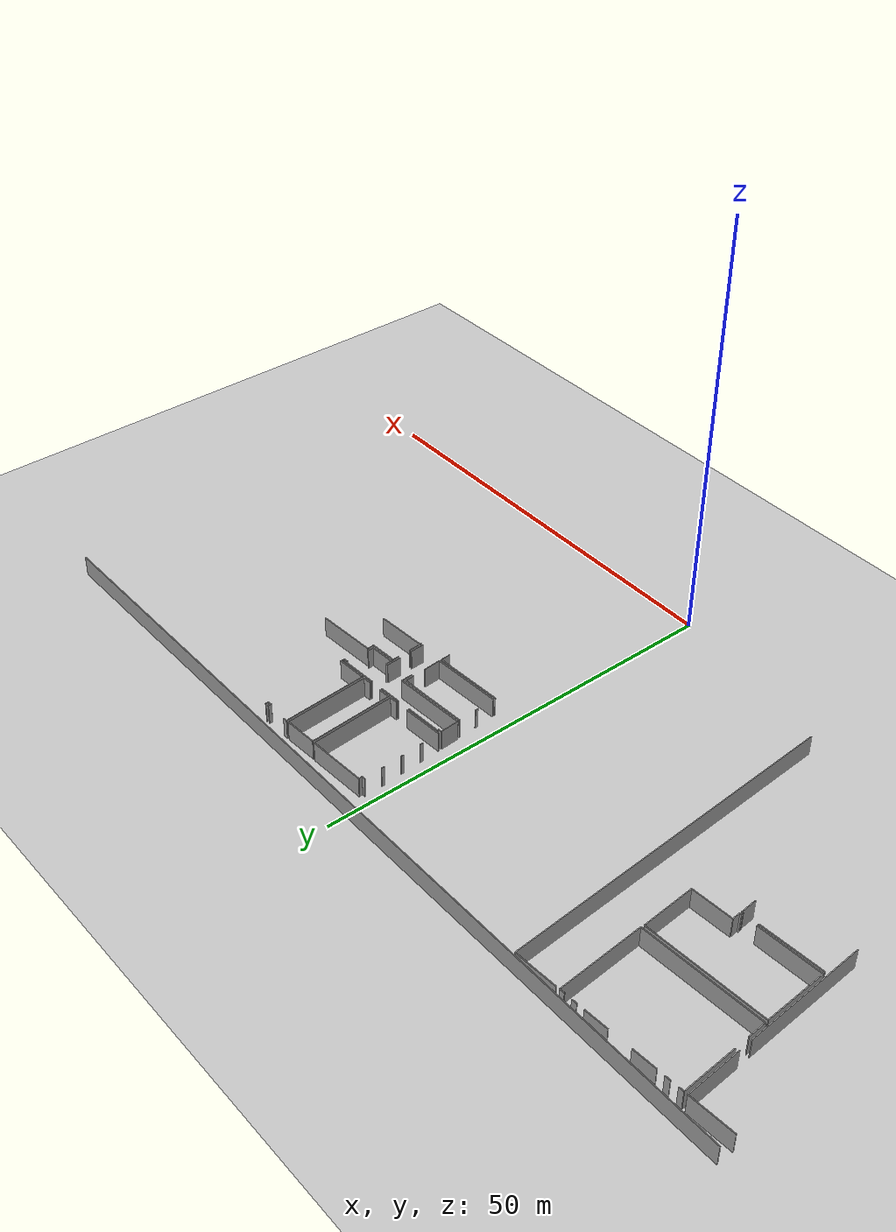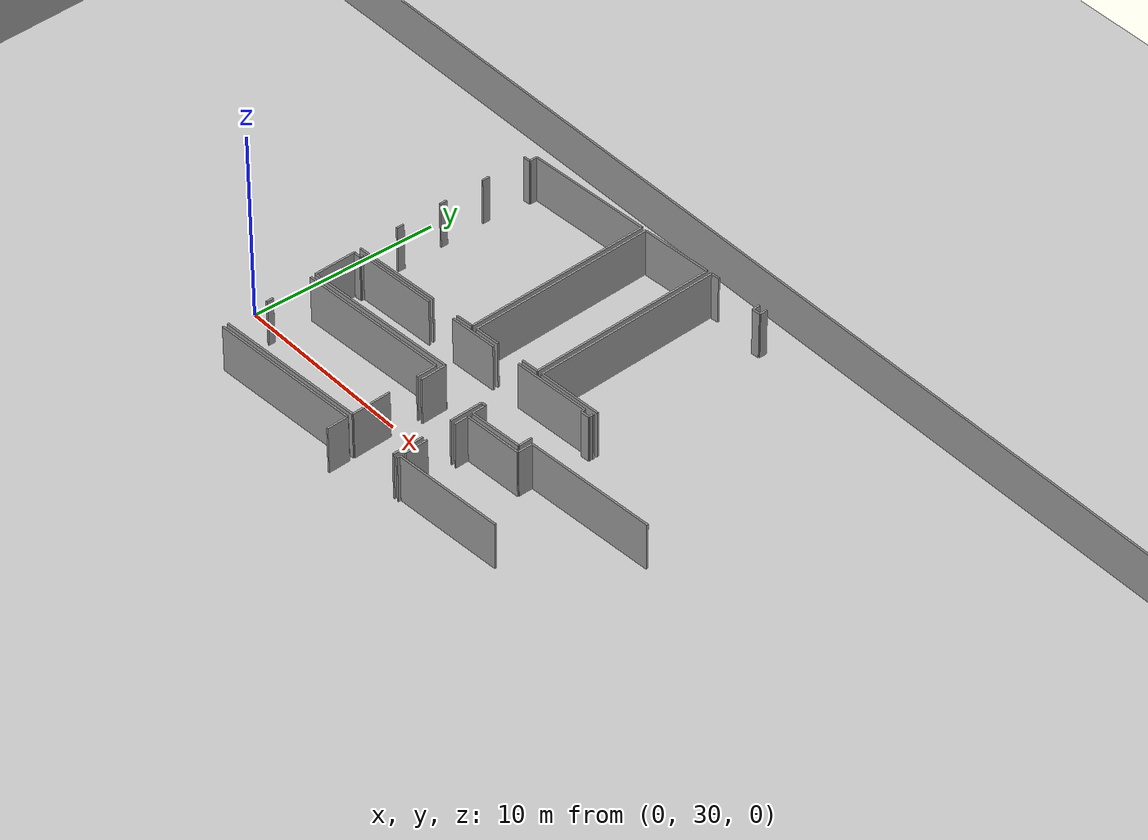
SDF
<sdf version="1.6">
 <world name="default">
  <model name="ground_plane">
   <static>1</static>
   <link name="link">
    <collision name="collision">
     <geometry><plane><normal>0 0 1</normal><size>100 100</size></plane></geometry>
     <surface><friction><ode><mu>100</mu><mu2>50</mu2></ode></friction></surface>
    </collision>
    <visual name="visual">
     <cast_shadows>0</cast_shadows>
     <geometry><plane><normal>0 0 1</normal><size>100 100</size></plane></geometry>
     <material>
      <script><uri>file://media/materials/scripts/gazebo.material</uri><name>Gazebo/Grey</name></script>
     </material>
    </visual>
   </link>
  </model>
  <model name="50025633">
   <static>1</static>
   <link name="Wall_0">
    <collision name="Wall_0_Collision">
     <geometry><box><size>0.969436459965 0.1 2.5</size></box></geometry>
     <pose>0.484718229982 0 1.25 0 0 0</pose>
    </collision>
    <visual name="Wall_0_Visual">
     <pose>0.484718229982 0 1.25 0 0 0</pose>
     <geometry><box><size>0.969436459965 0.1 2.5</size></box></geometry>
     <material>
      <script><uri>file://media/materials/scripts/gazebo.material</uri><name>Gazebo/Grey</name></script>
      <ambient>1 1 1 1</ambient>
     </material>
    </visual>
    <pose>59.5283012875 -12.5141427038 0 0 0 -3.05907173526</pose>
   </link>
   <link name="Wall_1">
    <collision name="Wall_1_Collision">
     <geometry><box><size>4.89840338192 0.1 2.5</size></box></geometry>
     <pose>2.44920169096 0 1.25 0 0 0</pose>
    </collision>
    <visual name="Wall_1_Visual">
     <pose>2.44920169096 0 1.25 0 0 0</pose>
     <geometry><box><size>4.89840338192 0.1 2.5</size></box></geometry>
     <material>
      <script><uri>file://media/materials/scripts/gazebo.material</uri><name>Gazebo/Grey</name></script>
      <ambient>1 1 1 1</ambient>
     </material>
    </visual>
    <pose>56.970228227 -12.6720531534 0 0 0 -3.07837304394</pose>
   </link>
   <link name="Wall_2">
    <collision name="Wall_2_Collision">
     <geometry><box><size>0.39960573099 0.1 2.5</size></box></geometry>
     <pose>0.199802865495 0 1.25 0 0 0</pose>
    </collision>
    <visual name="Wall_2_Visual">
     <pose>0.199802865495 0 1.25 0 0 0</pose>
     <geometry><box><size>0.39960573099 0.1 2.5</size></box></geometry>
     <material>
      <script><uri>file://media/materials/scripts/gazebo.material</uri><name>Gazebo/Grey</name></script>
      <ambient>1 1 1 1</ambient>
     </material>
    </visual>
    <pose>51.9773106948 -10.8397583703 0 0 0 1.58891834909</pose>
   </link>
   <link name="Wall_3">
    <collision name="Wall_3_Collision">
     <geometry><box><size>0.38551686731 0.1 2.5</size></box></geometry>
     <pose>0.192758433655 0 1.25 0 0 0</pose>
    </collision>
    <visual name="Wall_3_Visual">
     <pose>0.192758433655 0 1.25 0 0 0</pose>
     <geometry><box><size>0.38551686731 0.1 2.5</size></box></geometry>
     <material>
      <script><uri>file://media/materials/scripts/gazebo.material</uri><name>Gazebo/Grey</name></script>
      <ambient>1 1 1 1</ambient>
     </material>
    </visual>
    <pose>51.8225762397 -8.25081464261 0 0 0 1.60342569152</pose>
   </link>
   <link name="Wall_4">
    <collision name="Wall_4_Collision">
     <geometry><box><size>0.398091356513 0.1 2.5</size></box></geometry>
     <pose>0.199045678256 0 1.25 0 0 0</pose>
    </collision>
    <visual name="Wall_4_Visual">
     <pose>0.199045678256 0 1.25 0 0 0</pose>
     <geometry><box><size>0.398091356513 0.1 2.5</size></box></geometry>
     <material>
      <script><uri>file://media/materials/scripts/gazebo.material</uri><name>Gazebo/Grey</name></script>
      <ambient>1 1 1 1</ambient>
     </material>
    </visual>
    <pose>51.6773697683 -5.69274158203 0 0 0 1.60271396404</pose>
   </link>
   <link name="Wall_5">
    <collision name="Wall_5_Collision">
     <geometry><box><size>0.392351935738 0.1 2.5</size></box></geometry>
     <pose>0.196175967869 0 1.25 0 0 0</pose>
    </collision>
    <visual name="Wall_5_Visual">
     <pose>0.196175967869 0 1.25 0 0 0</pose>
     <geometry><box><size>0.392351935738 0.1 2.5</size></box></geometry>
     <material>
      <script><uri>file://media/materials/scripts/gazebo.material</uri><name>Gazebo/Grey</name></script>
      <ambient>1 1 1 1</ambient>
     </material>
    </visual>
    <pose>51.5258113078 -3.14102051057 0 0 0 0.0644789553313</pose>
   </link>
   <link name="Wall_6">
    <collision name="Wall_6_Collision">
     <geometry><box><size>0.423217186138 0.1 2.5</size></box></geometry>
     <pose>0.211608593069 0 1.25 0 0 0</pose>
    </collision>
    <visual name="Wall_6_Visual">
     <pose>0.211608593069 0 1.25 0 0 0</pose>
     <geometry><box><size>0.423217186138 0.1 2.5</size></box></geometry>
     <material>
      <script><uri>file://media/materials/scripts/gazebo.material</uri><name>Gazebo/Grey</name></script>
      <ambient>1 1 1 1</ambient>
     </material>
    </visual>
    <pose>51.9173479175 -3.11573959385 0 0 0 1.58580570694</pose>
   </link>
   <link name="Wall_7">
    <collision name="Wall_7_Collision">
     <geometry><box><size>6.99771601938 0.1 2.5</size></box></geometry>
     <pose>3.49885800969 0 1.25 0 0 0</pose>
    </collision>
    <visual name="Wall_7_Visual">
     <pose>3.49885800969 0 1.25 0 0 0</pose>
     <geometry><box><size>6.99771601938 0.1 2.5</size></box></geometry>
     <material>
      <script><uri>file://media/materials/scripts/gazebo.material</uri><name>Gazebo/Grey</name></script>
      <ambient>1 1 1 1</ambient>
     </material>
    </visual>
    <pose>51.9109959284 -2.69257007832 0 0 0 0.0586998542074</pose>
   </link>
   <link name="Wall_8">
    <collision name="Wall_8_Collision">
     <geometry><box><size>10.2515792055 0.1 2.5</size></box></geometry>
     <pose>5.12578960273 0 1.25 0 0 0</pose>
    </collision>
    <visual name="Wall_8_Visual">
     <pose>5.12578960273 0 1.25 0 0 0</pose>
     <geometry><box><size>10.2515792055 0.1 2.5</size></box></geometry>
     <material>
      <script><uri>file://media/materials/scripts/gazebo.material</uri><name>Gazebo/Grey</name></script>
      <ambient>1 1 1 1</ambient>
     </material>
    </visual>
    <pose>58.8966594889 -2.28204102115 0 0 0 -1.50914317851</pose>
   </link>
   <link name="Wall_9">
    <collision name="Wall_9_Collision">
     <geometry><box><size>0.957259403958 0.1 2.5</size></box></geometry>
     <pose>0.478629701979 0 1.25 0 0 0</pose>
    </collision>
    <visual name="Wall_9_Visual">
     <pose>0.478629701979 0 1.25 0 0 0</pose>
     <geometry><box><size>0.957259403958 0.1 2.5</size></box></geometry>
     <material>
      <script><uri>file://media/materials/scripts/gazebo.material</uri><name>Gazebo/Grey</name></script>
      <ambient>1 1 1 1</ambient>
     </material>
    </visual>
    <pose>63.7411945551 -12.2488836379 0 0 0 -3.08037420395</pose>
   </link>
   <link name="Wall_10">
    <collision name="Wall_10_Collision">
     <geometry><box><size>1.39302038249 0.1 2.5</size></box></geometry>
     <pose>0.696510191243 0 1.25 0 0 0</pose>
    </collision>
    <visual name="Wall_10_Visual">
     <pose>0.696510191243 0 1.25 0 0 0</pose>
     <geometry><box><size>1.39302038249 0.1 2.5</size></box></geometry>
     <material>
      <script><uri>file://media/materials/scripts/gazebo.material</uri><name>Gazebo/Grey</name></script>
      <ambient>1 1 1 1</ambient>
     </material>
    </visual>
    <pose>61.202685621 -12.3990446608 0 0 0 -3.07935588312</pose>
   </link>
   <link name="Wall_11">
    <collision name="Wall_11_Collision">
     <geometry><box><size>10.2055584932 0.1 2.5</size></box></geometry>
     <pose>5.10277924658 0 1.25 0 0 0</pose>
    </collision>
    <visual name="Wall_11_Visual">
     <pose>5.10277924658 0 1.25 0 0 0</pose>
     <geometry><box><size>10.2055584932 0.1 2.5</size></box></geometry>
     <material>
      <script><uri>file://media/materials/scripts/gazebo.material</uri><name>Gazebo/Grey</name></script>
      <ambient>1 1 1 1</ambient>
     </material>
    </visual>
    <pose>59.8123622412 -12.4856857925 0 0 0 1.63323920801</pose>
   </link>
   <link name="Wall_12">
    <collision name="Wall_12_Collision">
     <geometry><box><size>3.95240272326 0.1 2.5</size></box></geometry>
     <pose>1.97620136163 0 1.25 0 0 0</pose>
    </collision>
    <visual name="Wall_12_Visual">
     <pose>1.97620136163 0 1.25 0 0 0</pose>
     <geometry><box><size>3.95240272326 0.1 2.5</size></box></geometry>
     <material>
      <script><uri>file://media/materials/scripts/gazebo.material</uri><name>Gazebo/Grey</name></script>
      <ambient>1 1 1 1</ambient>
     </material>
    </visual>
    <pose>59.1755118115 -2.30001715037 0 0 0 0.0649186328604</pose>
   </link>
   <link name="Wall_13">
    <collision name="Wall_13_Collision">
     <geometry><box><size>10.2241844338 0.1 2.5</size></box></geometry>
     <pose>5.11209221692 0 1.25 0 0 0</pose>
    </collision>
    <visual name="Wall_13_Visual">
     <pose>5.11209221692 0 1.25 0 0 0</pose>
     <geometry><box><size>10.2241844338 0.1 2.5</size></box></geometry>
     <material>
      <script><uri>file://media/materials/scripts/gazebo.material</uri><name>Gazebo/Grey</name></script>
      <ambient>1 1 1 1</ambient>
     </material>
    </visual>
    <pose>63.1195888993 -2.04361275733 0 0 0 -1.50996123104</pose>
   </link>
   <link name="Wall_15">
    <collision name="Wall_15_Collision">
     <geometry><box><size>3.58060873368 0.1 2.5</size></box></geometry>
     <pose>1.79030436684 0 1.25 0 0 0</pose>
    </collision>
    <visual name="Wall_15_Visual">
     <pose>1.79030436684 0 1.25 0 0 0</pose>
     <geometry><box><size>3.58060873368 0.1 2.5</size></box></geometry>
     <material>
      <script><uri>file://media/materials/scripts/gazebo.material</uri><name>Gazebo/Grey</name></script>
      <ambient>1 1 1 1</ambient>
     </material>
    </visual>
    <pose>67.6002820283 -12.0214824272 0 0 0 -3.08511404785</pose>
   </link>
   <link name="Wall_16">
    <collision name="Wall_16_Collision">
     <geometry><box><size>10.2271120577 0.1 2.5</size></box></geometry>
     <pose>5.11355602885 0 1.25 0 0 0</pose>
    </collision>
    <visual name="Wall_16_Visual">
     <pose>5.11355602885 0 1.25 0 0 0</pose>
     <geometry><box><size>10.2271120577 0.1 2.5</size></box></geometry>
     <material>
      <script><uri>file://media/materials/scripts/gazebo.material</uri><name>Gazebo/Grey</name></script>
      <ambient>1 1 1 1</ambient>
     </material>
    </visual>
    <pose>64.0253825485 -12.2236027212 0 0 0 1.63258471512</pose>
   </link>
   <link name="Wall_17">
    <collision name="Wall_17_Collision">
     <geometry><box><size>0.477315919187 0.1 2.5</size></box></geometry>
     <pose>0.238657959593 0 1.25 0 0 0</pose>
    </collision>
    <visual name="Wall_17_Visual">
     <pose>0.238657959593 0 1.25 0 0 0</pose>
     <geometry><box><size>0.477315919187 0.1 2.5</size></box></geometry>
     <material>
      <script><uri>file://media/materials/scripts/gazebo.material</uri><name>Gazebo/Grey</name></script>
      <ambient>1 1 1 1</ambient>
     </material>
    </visual>
    <pose>63.3938677897 -2.0160070126 0 0 0 0.0700559247163</pose>
   </link>
   <link name="Wall_18">
    <collision name="Wall_18_Collision">
     <geometry><box><size>0.398716292036 0.1 2.5</size></box></geometry>
     <pose>0.199358146018 0 1.25 0 0 0</pose>
    </collision>
    <visual name="Wall_18_Visual">
     <pose>0.199358146018 0 1.25 0 0 0</pose>
     <geometry><box><size>0.398716292036 0.1 2.5</size></box></geometry>
     <material>
      <script><uri>file://media/materials/scripts/gazebo.material</uri><name>Gazebo/Grey</name></script>
      <ambient>1 1 1 1</ambient>
     </material>
    </visual>
    <pose>66.4381220979 -1.82096283451 0 0 0 -1.50734798673</pose>
   </link>
   <link name="Wall_19">
    <collision name="Wall_19_Collision">
     <geometry><box><size>0.436477734711 0.1 2.5</size></box></geometry>
     <pose>0.218238867355 0 1.25 0 0 0</pose>
    </collision>
    <visual name="Wall_19_Visual">
     <pose>0.218238867355 0 1.25 0 0 0</pose>
     <geometry><box><size>0.436477734711 0.1 2.5</size></box></geometry>
     <material>
      <script><uri>file://media/materials/scripts/gazebo.material</uri><name>Gazebo/Grey</name></script>
      <ambient>1 1 1 1</ambient>
     </material>
    </visual>
    <pose>66.4634030147 -2.21887684128 0 0 0 0.0578944140467</pose>
   </link>
   <link name="Wall_20">
    <collision name="Wall_20_Collision">
     <geometry><box><size>0.39796269521 0.1 2.5</size></box></geometry>
     <pose>0.198981347605 0 1.25 0 0 0</pose>
    </collision>
    <visual name="Wall_20_Visual">
     <pose>0.198981347605 0 1.25 0 0 0</pose>
     <geometry><box><size>0.39796269521 0.1 2.5</size></box></geometry>
     <material>
      <script><uri>file://media/materials/scripts/gazebo.material</uri><name>Gazebo/Grey</name></script>
      <ambient>1 1 1 1</ambient>
     </material>
    </visual>
    <pose>66.8991494687 -2.19362133252 0 0 0 1.58643900711</pose>
   </link>
   <link name="Wall_59">
    <collision name="Wall_59_Collision">
     <geometry><box><size>1.43457575567 0.1 2.5</size></box></geometry>
     <pose>0.717287877837 0 1.25 0 0 0</pose>
    </collision>
    <visual name="Wall_59_Visual">
     <pose>0.717287877837 0 1.25 0 0 0</pose>
     <geometry><box><size>1.43457575567 0.1 2.5</size></box></geometry>
     <material>
      <script><uri>file://media/materials/scripts/gazebo.material</uri><name>Gazebo/Grey</name></script>
      <ambient>1 1 1 1</ambient>
     </material>
    </visual>
    <pose>61.008187714 -16.5411767695 0 0 0 1.63779450686</pose>
   </link>
   <link name="Wall_60">
    <collision name="Wall_60_Collision">
     <geometry><box><size>8.64301678864 0.1 2.5</size></box></geometry>
     <pose>4.32150839432 0 1.25 0 0 0</pose>
    </collision>
    <visual name="Wall_60_Visual">
     <pose>4.32150839432 0 1.25 0 0 0</pose>
     <geometry><box><size>8.64301678864 0.1 2.5</size></box></geometry>
     <material>
      <script><uri>file://media/materials/scripts/gazebo.material</uri><name>Gazebo/Grey</name></script>
      <ambient>1 1 1 1</ambient>
     </material>
    </visual>
    <pose>60.9121456384 -15.10981954 0 0 0 -3.07930403915</pose>
   </link>
   <link name="Wall_61">
    <collision name="Wall_61_Collision">
     <geometry><box><size>2.27100583824 0.1 2.5</size></box></geometry>
     <pose>1.13550291912 0 1.25 0 0 0</pose>
    </collision>
    <visual name="Wall_61_Visual">
     <pose>1.13550291912 0 1.25 0 0 0</pose>
     <geometry><box><size>2.27100583824 0.1 2.5</size></box></geometry>
     <material>
      <script><uri>file://media/materials/scripts/gazebo.material</uri><name>Gazebo/Grey</name></script>
      <ambient>1 1 1 1</ambient>
     </material>
    </visual>
    <pose>52.2858903266 -15.6478330189 0 0 0 1.63001532079</pose>
   </link>
   <link name="Wall_62">
    <collision name="Wall_62_Collision">
     <geometry><box><size>0.432614855793 0.1 2.5</size></box></geometry>
     <pose>0.216307427896 0 1.25 0 0 0</pose>
    </collision>
    <visual name="Wall_62_Visual">
     <pose>0.216307427896 0 1.25 0 0 0</pose>
     <geometry><box><size>0.432614855793 0.1 2.5</size></box></geometry>
     <material>
      <script><uri>file://media/materials/scripts/gazebo.material</uri><name>Gazebo/Grey</name></script>
      <ambient>1 1 1 1</ambient>
     </material>
    </visual>
    <pose>52.1514822367 -13.3808081001 0 0 0 0.0443565420437</pose>
   </link>
   <link name="Wall_63">
    <collision name="Wall_63_Collision">
     <geometry><box><size>0.183561275989 0.1 2.5</size></box></geometry>
     <pose>0.0917806379945 0 1.25 0 0 0</pose>
    </collision>
    <visual name="Wall_63_Visual">
     <pose>0.0917806379945 0 1.25 0 0 0</pose>
     <geometry><box><size>0.183561275989 0.1 2.5</size></box></geometry>
     <material>
      <script><uri>file://media/materials/scripts/gazebo.material</uri><name>Gazebo/Grey</name></script>
      <ambient>1 1 1 1</ambient>
     </material>
    </visual>
    <pose>52.5836715768 -13.3616250929 0 0 0 1.67549213892</pose>
   </link>
   <link name="Wall_64">
    <collision name="Wall_64_Collision">
     <geometry><box><size>4.45454311619 0.1 2.5</size></box></geometry>
     <pose>2.2272715581 0 1.25 0 0 0</pose>
    </collision>
    <visual name="Wall_64_Visual">
     <pose>2.2272715581 0 1.25 0 0 0</pose>
     <geometry><box><size>4.45454311619 0.1 2.5</size></box></geometry>
     <material>
      <script><uri>file://media/materials/scripts/gazebo.material</uri><name>Gazebo/Grey</name></script>
      <ambient>1 1 1 1</ambient>
     </material>
    </visual>
    <pose>52.5644885696 -13.1790689254 0 0 0 0.0560980672879</pose>
   </link>
   <link name="Wall_65">
    <collision name="Wall_65_Collision">
     <geometry><box><size>2.64670446456 0.1 2.5</size></box></geometry>
     <pose>1.32335223228 0 1.25 0 0 0</pose>
    </collision>
    <visual name="Wall_65_Visual">
     <pose>1.32335223228 0 1.25 0 0 0</pose>
     <geometry><box><size>2.64670446456 0.1 2.5</size></box></geometry>
     <material>
      <script><uri>file://media/materials/scripts/gazebo.material</uri><name>Gazebo/Grey</name></script>
      <ambient>1 1 1 1</ambient>
     </material>
    </visual>
    <pose>58.5874446583 -12.8427946211 0 0 0 0.0617181882338</pose>
   </link>
   <link name="Wall_66">
    <collision name="Wall_66_Collision">
     <geometry><box><size>4.2702490757 0.1 2.5</size></box></geometry>
     <pose>2.13512453785 0 1.25 0 0 0</pose>
    </collision>
    <visual name="Wall_66_Visual">
     <pose>2.13512453785 0 1.25 0 0 0</pose>
     <geometry><box><size>4.2702490757 0.1 2.5</size></box></geometry>
     <material>
      <script><uri>file://media/materials/scripts/gazebo.material</uri><name>Gazebo/Grey</name></script>
      <ambient>1 1 1 1</ambient>
     </material>
    </visual>
    <pose>62.8237132458 -12.575375879 0 0 0 0.0629031613262</pose>
   </link>
   <link name="Wall_67">
    <collision name="Wall_67_Collision">
     <geometry><box><size>0.203390691795 0.1 2.5</size></box></geometry>
     <pose>0.101695345898 0 1.25 0 0 0</pose>
    </collision>
    <visual name="Wall_67_Visual">
     <pose>0.101695345898 0 1.25 0 0 0</pose>
     <geometry><box><size>0.203390691795 0.1 2.5</size></box></geometry>
     <material>
      <script><uri>file://media/materials/scripts/gazebo.material</uri><name>Gazebo/Grey</name></script>
      <ambient>1 1 1 1</ambient>
     </material>
    </visual>
    <pose>67.0855168296 -12.3069408185 0 0 0 -1.57079632679</pose>
   </link>
   <link name="Wall_68">
    <collision name="Wall_68_Collision">
     <geometry><box><size>0.466256372725 0.1 2.5</size></box></geometry>
     <pose>0.233128186362 0 1.25 0 0 0</pose>
    </collision>
    <visual name="Wall_68_Visual">
     <pose>0.233128186362 0 1.25 0 0 0</pose>
     <geometry><box><size>0.466256372725 0.1 2.5</size></box></geometry>
     <material>
      <script><uri>file://media/materials/scripts/gazebo.material</uri><name>Gazebo/Grey</name></script>
      <ambient>1 1 1 1</ambient>
     </material>
    </visual>
    <pose>67.0855168296 -12.5103315103 0 0 0 0.0780048331983</pose>
   </link>
   <link name="Wall_69">
    <collision name="Wall_69_Collision">
     <geometry><box><size>0.210756395576 0.1 2.5</size></box></geometry>
     <pose>0.105378197788 0 1.25 0 0 0</pose>
    </collision>
    <visual name="Wall_69_Visual">
     <pose>0.105378197788 0 1.25 0 0 0</pose>
     <geometry><box><size>0.210756395576 0.1 2.5</size></box></geometry>
     <material>
      <script><uri>file://media/materials/scripts/gazebo.material</uri><name>Gazebo/Grey</name></script>
      <ambient>1 1 1 1</ambient>
     </material>
    </visual>
    <pose>67.5503553938 -12.4739981325 0 0 0 1.60516156191</pose>
   </link>
   <link name="Wall_70">
    <collision name="Wall_70_Collision">
     <geometry><box><size>0.0726667555945 0.1 2.5</size></box></geometry>
     <pose>0.0363333777973 0 1.25 0 0 0</pose>
    </collision>
    <visual name="Wall_70_Visual">
     <pose>0.0363333777973 0 1.25 0 0 0</pose>
     <geometry><box><size>0.0726667555945 0.1 2.5</size></box></geometry>
     <material>
      <script><uri>file://media/materials/scripts/gazebo.material</uri><name>Gazebo/Grey</name></script>
      <ambient>1 1 1 1</ambient>
     </material>
    </visual>
    <pose>67.5431141262 -12.2633661731 0 0 0 0.0</pose>
   </link>
   <link name="Wall_82">
    <collision name="Wall_82_Collision">
     <geometry><box><size>0.73858093279 0.1 2.5</size></box></geometry>
     <pose>0.369290466395 0 1.25 0 0 0</pose>
    </collision>
    <visual name="Wall_82_Visual">
     <pose>0.369290466395 0 1.25 0 0 0</pose>
     <geometry><box><size>0.73858093279 0.1 2.5</size></box></geometry>
     <material>
      <script><uri>file://media/materials/scripts/gazebo.material</uri><name>Gazebo/Grey</name></script>
      <ambient>1 1 1 1</ambient>
     </material>
    </visual>
    <pose>67.0745914083 -15.2740819788 0 0 0 -1.50193983749</pose>
   </link>
   <link name="Wall_83">
    <collision name="Wall_83_Collision">
     <geometry><box><size>2.95347686389 0.1 2.5</size></box></geometry>
     <pose>1.47673843194 0 1.25 0 0 0</pose>
    </collision>
    <visual name="Wall_83_Visual">
     <pose>1.47673843194 0 1.25 0 0 0</pose>
     <geometry><box><size>2.95347686389 0.1 2.5</size></box></geometry>
     <material>
      <script><uri>file://media/materials/scripts/gazebo.material</uri><name>Gazebo/Grey</name></script>
      <ambient>1 1 1 1</ambient>
     </material>
    </visual>
    <pose>67.1254073213 -16.0109127173 0 0 0 -3.07702734837</pose>
   </link>
   <link name="Wall_84">
    <collision name="Wall_84_Collision">
     <geometry><box><size>0.763930680914 0.1 2.5</size></box></geometry>
     <pose>0.381965340457 0 1.25 0 0 0</pose>
    </collision>
    <visual name="Wall_84_Visual">
     <pose>0.381965340457 0 1.25 0 0 0</pose>
     <geometry><box><size>0.763930680914 0.1 2.5</size></box></geometry>
     <material>
      <script><uri>file://media/materials/scripts/gazebo.material</uri><name>Gazebo/Grey</name></script>
      <ambient>1 1 1 1</ambient>
     </material>
    </visual>
    <pose>64.1780843671 -16.2014723911 0 0 0 1.63736449057</pose>
   </link>
   <link name="Wall_85">
    <collision name="Wall_85_Collision">
     <geometry><box><size>0.249570582334 0.1 2.5</size></box></geometry>
     <pose>0.124785291167 0 1.25 0 0 0</pose>
    </collision>
    <visual name="Wall_85_Visual">
     <pose>0.124785291167 0 1.25 0 0 0</pose>
     <geometry><box><size>0.249570582334 0.1 2.5</size></box></geometry>
     <material>
      <script><uri>file://media/materials/scripts/gazebo.material</uri><name>Gazebo/Grey</name></script>
      <ambient>1 1 1 1</ambient>
     </material>
    </visual>
    <pose>64.1272684541 -15.439233696 0 0 0 -3.07383937541</pose>
   </link>
   <link name="Wall_86">
    <collision name="Wall_86_Collision">
     <geometry><box><size>1.80700113468 0.1 2.5</size></box></geometry>
     <pose>0.903500567341 0 1.25 0 0 0</pose>
    </collision>
    <visual name="Wall_86_Visual">
     <pose>0.903500567341 0 1.25 0 0 0</pose>
     <geometry><box><size>1.80700113468 0.1 2.5</size></box></geometry>
     <material>
      <script><uri>file://media/materials/scripts/gazebo.material</uri><name>Gazebo/Grey</name></script>
      <ambient>1 1 1 1</ambient>
     </material>
    </visual>
    <pose>63.8782704804 -15.4561299871 0 0 0 -1.51529782155</pose>
   </link>
   <link name="Wall_87">
    <collision name="Wall_87_Collision">
     <geometry><box><size>1.69778613728 0.1 2.5</size></box></geometry>
     <pose>0.848893068639 0 1.25 0 0 0</pose>
    </collision>
    <visual name="Wall_87_Visual">
     <pose>0.848893068639 0 1.25 0 0 0</pose>
     <geometry><box><size>1.69778613728 0.1 2.5</size></box></geometry>
     <material>
      <script><uri>file://media/materials/scripts/gazebo.material</uri><name>Gazebo/Grey</name></script>
      <ambient>1 1 1 1</ambient>
     </material>
    </visual>
    <pose>64.0787392572 -18.8390723555 0 0 0 -1.52154042481</pose>
   </link>
   <link name="Wall_93">
    <collision name="Wall_93_Collision">
     <geometry><box><size>8.36810745064 0.1 2.5</size></box></geometry>
     <pose>4.18405372532 0 1.25 0 0 0</pose>
    </collision>
    <visual name="Wall_93_Visual">
     <pose>4.18405372532 0 1.25 0 0 0</pose>
     <geometry><box><size>8.36810745064 0.1 2.5</size></box></geometry>
     <material>
      <script><uri>file://media/materials/scripts/gazebo.material</uri><name>Gazebo/Grey</name></script>
      <ambient>1 1 1 1</ambient>
     </material>
    </visual>
    <pose>60.9639778697 -20.2413374748 0 0 0 -3.08353664578</pose>
   </link>
   <link name="Wall_94">
    <collision name="Wall_94_Collision">
     <geometry><box><size>0.367253906187 0.1 2.5</size></box></geometry>
     <pose>0.183626953093 0 1.25 0 0 0</pose>
    </collision>
    <visual name="Wall_94_Visual">
     <pose>0.183626953093 0 1.25 0 0 0</pose>
     <geometry><box><size>0.367253906187 0.1 2.5</size></box></geometry>
     <material>
      <script><uri>file://media/materials/scripts/gazebo.material</uri><name>Gazebo/Grey</name></script>
      <ambient>1 1 1 1</ambient>
     </material>
    </visual>
    <pose>52.473146966 -18.5019087727 0 0 0 1.63968851593</pose>
   </link>
   <link name="Wall_95">
    <collision name="Wall_95_Collision">
     <geometry><box><size>8.36229477724 0.1 2.5</size></box></geometry>
     <pose>4.18114738862 0 1.25 0 0 0</pose>
    </collision>
    <visual name="Wall_95_Visual">
     <pose>4.18114738862 0 1.25 0 0 0</pose>
     <geometry><box><size>8.36229477724 0.1 2.5</size></box></geometry>
     <material>
      <script><uri>file://media/materials/scripts/gazebo.material</uri><name>Gazebo/Grey</name></script>
      <ambient>1 1 1 1</ambient>
     </material>
    </visual>
    <pose>52.3154905959 -15.9331643704 0 0 0 0.059176895606</pose>
   </link>
   <link name="Wall_96">
    <collision name="Wall_96_Collision">
     <geometry><box><size>1.10964712273 0.1 2.5</size></box></geometry>
     <pose>0.554823561367 0 1.25 0 0 0</pose>
    </collision>
    <visual name="Wall_96_Visual">
     <pose>0.554823561367 0 1.25 0 0 0</pose>
     <geometry><box><size>1.10964712273 0.1 2.5</size></box></geometry>
     <material>
      <script><uri>file://media/materials/scripts/gazebo.material</uri><name>Gazebo/Grey</name></script>
      <ambient>1 1 1 1</ambient>
     </material>
    </visual>
    <pose>60.6631476647 -15.4385984971 0 0 0 -1.5148977352</pose>
   </link>
   <link name="Wall_97">
    <collision name="Wall_97_Collision">
     <geometry><box><size>2.12191682836 0.1 2.5</size></box></geometry>
     <pose>1.06095841418 0 1.25 0 0 0</pose>
    </collision>
    <visual name="Wall_97_Visual">
     <pose>1.06095841418 0 1.25 0 0 0</pose>
     <geometry><box><size>2.12191682836 0.1 2.5</size></box></geometry>
     <material>
      <script><uri>file://media/materials/scripts/gazebo.material</uri><name>Gazebo/Grey</name></script>
      <ambient>1 1 1 1</ambient>
     </material>
    </visual>
    <pose>60.8176280402 -18.1244735789 0 0 0 -1.50177095024</pose>
   </link>
   <link name="Wall_102">
    <collision name="Wall_102_Collision">
     <geometry><box><size>8.35395395129 0.1 2.5</size></box></geometry>
     <pose>4.17697697564 0 1.25 0 0 0</pose>
    </collision>
    <visual name="Wall_102_Visual">
     <pose>4.17697697564 0 1.25 0 0 0</pose>
     <geometry><box><size>8.35395395129 0.1 2.5</size></box></geometry>
     <material>
      <script><uri>file://media/materials/scripts/gazebo.material</uri><name>Gazebo/Grey</name></script>
      <ambient>1 1 1 1</ambient>
     </material>
    </visual>
    <pose>52.6247054265 -21.0092929601 0 0 0 0.0585200722298</pose>
   </link>
   <link name="Wall_103">
    <collision name="Wall_103_Collision">
     <geometry><box><size>1.16503192049 0.1 2.5</size></box></geometry>
     <pose>0.582515960244 0 1.25 0 0 0</pose>
    </collision>
    <visual name="Wall_103_Visual">
     <pose>0.582515960244 0 1.25 0 0 0</pose>
     <geometry><box><size>1.16503192049 0.1 2.5</size></box></geometry>
     <material>
      <script><uri>file://media/materials/scripts/gazebo.material</uri><name>Gazebo/Grey</name></script>
      <ambient>1 1 1 1</ambient>
     </material>
    </visual>
    <pose>60.964358989 -20.5206979566 0 0 0 -1.50881964552</pose>
   </link>
   <link name="Wall_170">
    <collision name="Wall_170_Collision">
     <geometry><box><size>1.24799331632 0.1 2.5</size></box></geometry>
     <pose>0.62399665816 0 1.25 0 0 0</pose>
    </collision>
    <visual name="Wall_170_Visual">
     <pose>0.62399665816 0 1.25 0 0 0</pose>
     <geometry><box><size>1.24799331632 0.1 2.5</size></box></geometry>
     <material>
      <script><uri>file://media/materials/scripts/gazebo.material</uri><name>Gazebo/Grey</name></script>
      <ambient>1 1 1 1</ambient>
     </material>
    </visual>
    <pose>64.4296231365 -20.0670388932 0 0 0 1.64446089225</pose>
   </link>
   <link name="Wall_171">
    <collision name="Wall_171_Collision">
     <geometry><box><size>0.769962591831 0.1 2.5</size></box></geometry>
     <pose>0.384981295916 0 1.25 0 0 0</pose>
    </collision>
    <visual name="Wall_171_Visual">
     <pose>0.384981295916 0 1.25 0 0 0</pose>
     <geometry><box><size>0.769962591831 0.1 2.5</size></box></geometry>
     <material>
      <script><uri>file://media/materials/scripts/gazebo.material</uri><name>Gazebo/Grey</name></script>
      <ambient>1 1 1 1</ambient>
     </material>
    </visual>
    <pose>64.264598459 -17.2616193761 0 0 0 1.6332048447</pose>
   </link>
   <link name="Wall_172">
    <collision name="Wall_172_Collision">
     <geometry><box><size>3.22321867752 0.1 2.5</size></box></geometry>
     <pose>1.61160933876 0 1.25 0 0 0</pose>
    </collision>
    <visual name="Wall_172_Visual">
     <pose>1.61160933876 0 1.25 0 0 0</pose>
     <geometry><box><size>3.22321867752 0.1 2.5</size></box></geometry>
     <material>
      <script><uri>file://media/materials/scripts/gazebo.material</uri><name>Gazebo/Grey</name></script>
      <ambient>1 1 1 1</ambient>
     </material>
    </visual>
    <pose>64.2165774212 -16.4931557317 0 0 0 0.0566681720676</pose>
   </link>
   <link name="Wall_173">
    <collision name="Wall_173_Collision">
     <geometry><box><size>0.817385580547 0.1 2.5</size></box></geometry>
     <pose>0.408692790274 0 1.25 0 0 0</pose>
    </collision>
    <visual name="Wall_173_Visual">
     <pose>0.408692790274 0 1.25 0 0 0</pose>
     <geometry><box><size>0.817385580547 0.1 2.5</size></box></geometry>
     <material>
      <script><uri>file://media/materials/scripts/gazebo.material</uri><name>Gazebo/Grey</name></script>
      <ambient>1 1 1 1</ambient>
     </material>
    </visual>
    <pose>67.4346221519 -16.3105995643 0 0 0 1.61775105263</pose>
   </link>
   <link name="Wall_174">
    <collision name="Wall_174_Collision">
     <geometry><box><size>7.1712478913 0.1 2.5</size></box></geometry>
     <pose>3.58562394565 0 1.25 0 0 0</pose>
    </collision>
    <visual name="Wall_174_Visual">
     <pose>3.58562394565 0 1.25 0 0 0</pose>
     <geometry><box><size>7.1712478913 0.1 2.5</size></box></geometry>
     <material>
      <script><uri>file://media/materials/scripts/gazebo.material</uri><name>Gazebo/Grey</name></script>
      <ambient>1 1 1 1</ambient>
     </material>
    </visual>
    <pose>67.3962561376 -15.4941148821 0 0 0 0.0643504231004</pose>
   </link>
   <link name="Wall_183">
    <collision name="Wall_183_Collision">
     <geometry><box><size>0.192084151152 0.1 2.5</size></box></geometry>
     <pose>0.096042075576 0 1.25 0 0 0</pose>
    </collision>
    <visual name="Wall_183_Visual">
     <pose>0.096042075576 0 1.25 0 0 0</pose>
     <geometry><box><size>0.192084151152 0.1 2.5</size></box></geometry>
     <material>
      <script><uri>file://media/materials/scripts/gazebo.material</uri><name>Gazebo/Grey</name></script>
      <ambient>1 1 1 1</ambient>
     </material>
    </visual>
    <pose>64.437499603 -20.5468681518 0 0 0 1.57079632679</pose>
   </link>
   <link name="Wall_184">
    <collision name="Wall_184_Collision">
     <geometry><box><size>6.04466043274 0.1 2.5</size></box></geometry>
     <pose>3.02233021637 0 1.25 0 0 0</pose>
    </collision>
    <visual name="Wall_184_Visual">
     <pose>3.02233021637 0 1.25 0 0 0</pose>
     <geometry><box><size>6.04466043274 0.1 2.5</size></box></geometry>
     <material>
      <script><uri>file://media/materials/scripts/gazebo.material</uri><name>Gazebo/Grey</name></script>
      <ambient>1 1 1 1</ambient>
     </material>
    </visual>
    <pose>64.437499603 -20.3547840006 0 0 0 0.0624817377902</pose>
   </link>
   <link name="Wall_295">
    <collision name="Wall_295_Collision">
     <geometry><box><size>14.4407688101 0.1 2.5</size></box></geometry>
     <pose>7.22038440504 0 1.25 0 0 0</pose>
    </collision>
    <visual name="Wall_295_Visual">
     <pose>7.22038440504 0 1.25 0 0 0</pose>
     <geometry><box><size>14.4407688101 0.1 2.5</size></box></geometry>
     <material>
      <script><uri>file://media/materials/scripts/gazebo.material</uri><name>Gazebo/Grey</name></script>
      <ambient>1 1 1 1</ambient>
     </material>
    </visual>
    <pose>20.5963247391 -11.0751630873 0 0 0 -3.0822287982</pose>
   </link>
   <link name="Wall_296">
    <collision name="Wall_296_Collision">
     <geometry><box><size>2.19932281952 0.1 2.5</size></box></geometry>
     <pose>1.09966140976 0 1.25 0 0 0</pose>
    </collision>
    <visual name="Wall_296_Visual">
     <pose>1.09966140976 0 1.25 0 0 0</pose>
     <geometry><box><size>2.19932281952 0.1 2.5</size></box></geometry>
     <material>
      <script><uri>file://media/materials/scripts/gazebo.material</uri><name>Gazebo/Grey</name></script>
      <ambient>1 1 1 1</ambient>
     </material>
    </visual>
    <pose>6.18099357814 -11.9319193806 0 0 0 1.62876521282</pose>
   </link>
   <link name="Wall_297">
    <collision name="Wall_297_Collision">
     <geometry><box><size>6.49647866586 0.1 2.5</size></box></geometry>
     <pose>3.24823933293 0 1.25 0 0 0</pose>
    </collision>
    <visual name="Wall_297_Visual">
     <pose>3.24823933293 0 1.25 0 0 0</pose>
     <geometry><box><size>6.49647866586 0.1 2.5</size></box></geometry>
     <material>
      <script><uri>file://media/materials/scripts/gazebo.material</uri><name>Gazebo/Grey</name></script>
      <ambient>1 1 1 1</ambient>
     </material>
    </visual>
    <pose>5.94635109985 -7.99178052607 0 0 0 1.62945637967</pose>
   </link>
   <link name="Wall_298">
    <collision name="Wall_298_Collision">
     <geometry><box><size>0.594617711547 0.1 2.5</size></box></geometry>
     <pose>0.297308855773 0 1.25 0 0 0</pose>
    </collision>
    <visual name="Wall_298_Visual">
     <pose>0.297308855773 0 1.25 0 0 0</pose>
     <geometry><box><size>0.594617711547 0.1 2.5</size></box></geometry>
     <material>
      <script><uri>file://media/materials/scripts/gazebo.material</uri><name>Gazebo/Grey</name></script>
      <ambient>1 1 1 1</ambient>
     </material>
    </visual>
    <pose>5.56548583189 -1.50647585291 0 0 0 0.0703058637758</pose>
   </link>
   <link name="Wall_299">
    <collision name="Wall_299_Collision">
     <geometry><box><size>0.636316485346 0.1 2.5</size></box></geometry>
     <pose>0.318158242673 0 1.25 0 0 0</pose>
    </collision>
    <visual name="Wall_299_Visual">
     <pose>0.318158242673 0 1.25 0 0 0</pose>
     <geometry><box><size>0.636316485346 0.1 2.5</size></box></geometry>
     <material>
      <script><uri>file://media/materials/scripts/gazebo.material</uri><name>Gazebo/Grey</name></script>
      <ambient>1 1 1 1</ambient>
     </material>
    </visual>
    <pose>7.03559019507 -1.40622876054 0 0 0 0.0656717341971</pose>
   </link>
   <link name="Wall_300">
    <collision name="Wall_300_Collision">
     <geometry><box><size>2.83248284187 0.1 2.5</size></box></geometry>
     <pose>1.41624142094 0 1.25 0 0 0</pose>
    </collision>
    <visual name="Wall_300_Visual">
     <pose>1.41624142094 0 1.25 0 0 0</pose>
     <geometry><box><size>2.83248284187 0.1 2.5</size></box></geometry>
     <material>
      <script><uri>file://media/materials/scripts/gazebo.material</uri><name>Gazebo/Grey</name></script>
      <ambient>1 1 1 1</ambient>
     </material>
    </visual>
    <pose>8.54761768648 -1.32270010354 0 0 0 0.0649630689439</pose>
   </link>
   <link name="Wall_301">
    <collision name="Wall_301_Collision">
     <geometry><box><size>2.82968318092 0.1 2.5</size></box></geometry>
     <pose>1.41484159046 0 1.25 0 0 0</pose>
    </collision>
    <visual name="Wall_301_Visual">
     <pose>1.41484159046 0 1.25 0 0 0</pose>
     <geometry><box><size>2.82968318092 0.1 2.5</size></box></geometry>
     <material>
      <script><uri>file://media/materials/scripts/gazebo.material</uri><name>Gazebo/Grey</name></script>
      <ambient>1 1 1 1</ambient>
     </material>
    </visual>
    <pose>14.1153902345 -0.968284518297 0 0 0 0.0670116439163</pose>
   </link>
   <link name="Wall_302">
    <collision name="Wall_302_Collision">
     <geometry><box><size>0.638648116394 0.1 2.5</size></box></geometry>
     <pose>0.319324058197 0 1.25 0 0 0</pose>
    </collision>
    <visual name="Wall_302_Visual">
     <pose>0.319324058197 0 1.25 0 0 0</pose>
     <geometry><box><size>0.638648116394 0.1 2.5</size></box></geometry>
     <material>
      <script><uri>file://media/materials/scripts/gazebo.material</uri><name>Gazebo/Grey</name></script>
      <ambient>1 1 1 1</ambient>
     </material>
    </visual>
    <pose>17.8039903196 -0.734594838374 0 0 0 0.0494716501416</pose>
   </link>
   <link name="Wall_303">
    <collision name="Wall_303_Collision">
     <geometry><box><size>0.594991996428 0.1 2.5</size></box></geometry>
     <pose>0.297495998214 0 1.25 0 0 0</pose>
    </collision>
    <visual name="Wall_303_Visual">
     <pose>0.297495998214 0 1.25 0 0 0</pose>
     <geometry><box><size>0.594991996428 0.1 2.5</size></box></geometry>
     <material>
      <script><uri>file://media/materials/scripts/gazebo.material</uri><name>Gazebo/Grey</name></script>
      <ambient>1 1 1 1</ambient>
     </material>
    </visual>
    <pose>19.3198290045 -0.652489026939 0 0 0 0.0637346986005</pose>
   </link>
   <link name="Wall_304">
    <collision name="Wall_304_Collision">
     <geometry><box><size>10.4828250338 0.1 2.5</size></box></geometry>
     <pose>5.24141251692 0 1.25 0 0 0</pose>
    </collision>
    <visual name="Wall_304_Visual">
     <pose>5.24141251692 0 1.25 0 0 0</pose>
     <geometry><box><size>10.4828250338 0.1 2.5</size></box></geometry>
     <material>
      <script><uri>file://media/materials/scripts/gazebo.material</uri><name>Gazebo/Grey</name></script>
      <ambient>1 1 1 1</ambient>
     </material>
    </visual>
    <pose>19.9136129479 -0.614593059817 0 0 0 -1.50562350064</pose>
   </link>
   <link name="Wall_307">
    <collision name="Wall_307_Collision">
     <geometry><box><size>5.16737620344 0.1 2.5</size></box></geometry>
     <pose>2.58368810172 0 1.25 0 0 0</pose>
    </collision>
    <visual name="Wall_307_Visual">
     <pose>2.58368810172 0 1.25 0 0 0</pose>
     <geometry><box><size>5.16737620344 0.1 2.5</size></box></geometry>
     <material>
      <script><uri>file://media/materials/scripts/gazebo.material</uri><name>Gazebo/Grey</name></script>
      <ambient>1 1 1 1</ambient>
     </material>
    </visual>
    <pose>0.0 -1.85558117525 0 0 0 0.0658886684046</pose>
   </link>
   <link name="Wall_308">
    <collision name="Wall_308_Collision">
     <geometry><box><size>6.59363249661 0.1 2.5</size></box></geometry>
     <pose>3.2968162483 0 1.25 0 0 0</pose>
    </collision>
    <visual name="Wall_308_Visual">
     <pose>3.2968162483 0 1.25 0 0 0</pose>
     <geometry><box><size>6.59363249661 0.1 2.5</size></box></geometry>
     <material>
      <script><uri>file://media/materials/scripts/gazebo.material</uri><name>Gazebo/Grey</name></script>
      <ambient>1 1 1 1</ambient>
     </material>
    </visual>
    <pose>5.15616365265 -1.51535593371 0 0 0 -1.50883241513</pose>
   </link>
   <link name="Wall_309">
    <collision name="Wall_309_Collision">
     <geometry><box><size>14.6694200732 0.1 2.5</size></box></geometry>
     <pose>7.33471003658 0 1.25 0 0 0</pose>
    </collision>
    <visual name="Wall_309_Visual">
     <pose>7.33471003658 0 1.25 0 0 0</pose>
     <geometry><box><size>14.6694200732 0.1 2.5</size></box></geometry>
     <material>
      <script><uri>file://media/materials/scripts/gazebo.material</uri><name>Gazebo/Grey</name></script>
      <ambient>1 1 1 1</ambient>
     </material>
    </visual>
    <pose>5.67626452224 -9.72244348318 0 0 0 -1.50989495894</pose>
   </link>
   <link name="Wall_336">
    <collision name="Wall_336_Collision">
     <geometry><box><size>7.50440427143 0.1 2.5</size></box></geometry>
     <pose>3.75220213571 0 1.25 0 0 0</pose>
    </collision>
    <visual name="Wall_336_Visual">
     <pose>3.75220213571 0 1.25 0 0 0</pose>
     <geometry><box><size>7.50440427143 0.1 2.5</size></box></geometry>
     <material>
      <script><uri>file://media/materials/scripts/gazebo.material</uri><name>Gazebo/Grey</name></script>
      <ambient>1 1 1 1</ambient>
     </material>
    </visual>
    <pose>6.70376228316 -20.1370378134 0 0 0 0.0648824210045</pose>
   </link>
   <link name="Wall_337">
    <collision name="Wall_337_Collision">
     <geometry><box><size>0.174448936668 0.1 2.5</size></box></geometry>
     <pose>0.0872244683339 0 1.25 0 0 0</pose>
    </collision>
    <visual name="Wall_337_Visual">
     <pose>0.0872244683339 0 1.25 0 0 0</pose>
     <geometry><box><size>0.174448936668 0.1 2.5</size></box></geometry>
     <material>
      <script><uri>file://media/materials/scripts/gazebo.material</uri><name>Gazebo/Grey</name></script>
      <ambient>1 1 1 1</ambient>
     </material>
    </visual>
    <pose>15.9574670808 -19.541475313 0 0 0 0.0415213118565</pose>
   </link>
   <link name="Wall_338">
    <collision name="Wall_338_Collision">
     <geometry><box><size>1.98465103966 0.1 2.5</size></box></geometry>
     <pose>0.99232551983 0 1.25 0 0 0</pose>
    </collision>
    <visual name="Wall_338_Visual">
     <pose>0.99232551983 0 1.25 0 0 0</pose>
     <geometry><box><size>1.98465103966 0.1 2.5</size></box></geometry>
     <material>
      <script><uri>file://media/materials/scripts/gazebo.material</uri><name>Gazebo/Grey</name></script>
      <ambient>1 1 1 1</ambient>
     </material>
    </visual>
    <pose>16.1317656624 -19.5342340454 0 0 0 -1.48896279097</pose>
   </link>
   <link name="Wall_339">
    <collision name="Wall_339_Collision">
     <geometry><box><size>4.94464168038 0.1 2.5</size></box></geometry>
     <pose>2.47232084019 0 1.25 0 0 0</pose>
    </collision>
    <visual name="Wall_339_Visual">
     <pose>2.47232084019 0 1.25 0 0 0</pose>
     <geometry><box><size>4.94464168038 0.1 2.5</size></box></geometry>
     <material>
      <script><uri>file://media/materials/scripts/gazebo.material</uri><name>Gazebo/Grey</name></script>
      <ambient>1 1 1 1</ambient>
     </material>
    </visual>
    <pose>20.9966270938 -17.9730421582 0 0 0 -3.0795055919</pose>
   </link>
   <link name="Wall_340">
    <collision name="Wall_340_Collision">
     <geometry><box><size>0.984565838441 0.1 2.5</size></box></geometry>
     <pose>0.49228291922 0 1.25 0 0 0</pose>
    </collision>
    <visual name="Wall_340_Visual">
     <pose>0.49228291922 0 1.25 0 0 0</pose>
     <geometry><box><size>0.984565838441 0.1 2.5</size></box></geometry>
     <material>
      <script><uri>file://media/materials/scripts/gazebo.material</uri><name>Gazebo/Grey</name></script>
      <ambient>1 1 1 1</ambient>
     </material>
    </visual>
    <pose>16.0615126627 -18.2798432329 0 0 0 -1.47296366541</pose>
   </link>
   <link name="Wall_341">
    <collision name="Wall_341_Collision">
     <geometry><box><size>0.214847522774 0.1 2.5</size></box></geometry>
     <pose>0.107423761387 0 1.25 0 0 0</pose>
    </collision>
    <visual name="Wall_341_Visual">
     <pose>0.107423761387 0 1.25 0 0 0</pose>
     <geometry><box><size>0.214847522774 0.1 2.5</size></box></geometry>
     <material>
      <script><uri>file://media/materials/scripts/gazebo.material</uri><name>Gazebo/Grey</name></script>
      <ambient>1 1 1 1</ambient>
     </material>
    </visual>
    <pose>16.157681778 -19.2597010754 0 0 0 -2.96205647979</pose>
   </link>
   <link name="Wall_342">
    <collision name="Wall_342_Collision">
     <geometry><box><size>7.49584239144 0.1 2.5</size></box></geometry>
     <pose>3.74792119572 0 1.25 0 0 0</pose>
    </collision>
    <visual name="Wall_342_Visual">
     <pose>3.74792119572 0 1.25 0 0 0</pose>
     <geometry><box><size>7.49584239144 0.1 2.5</size></box></geometry>
     <material>
      <script><uri>file://media/materials/scripts/gazebo.material</uri><name>Gazebo/Grey</name></script>
      <ambient>1 1 1 1</ambient>
     </material>
    </visual>
    <pose>14.1371140373 -19.390170932 0 0 0 -3.08223969719</pose>
   </link>
   <link name="Wall_343">
    <collision name="Wall_343_Collision">
     <geometry><box><size>7.53651324518 0.1 2.5</size></box></geometry>
     <pose>3.76825662259 0 1.25 0 0 0</pose>
    </collision>
    <visual name="Wall_343_Visual">
     <pose>3.76825662259 0 1.25 0 0 0</pose>
     <geometry><box><size>7.53651324518 0.1 2.5</size></box></geometry>
     <material>
      <script><uri>file://media/materials/scripts/gazebo.material</uri><name>Gazebo/Grey</name></script>
      <ambient>1 1 1 1</ambient>
     </material>
    </visual>
    <pose>6.65447084755 -19.8348101708 0 0 0 1.62711018214</pose>
   </link>
   <link name="Wall_344">
    <collision name="Wall_344_Collision">
     <geometry><box><size>14.3368482633 0.1 2.5</size></box></geometry>
     <pose>7.16842413165 0 1.25 0 0 0</pose>
    </collision>
    <visual name="Wall_344_Visual">
     <pose>7.16842413165 0 1.25 0 0 0</pose>
     <geometry><box><size>14.3368482633 0.1 2.5</size></box></geometry>
     <material>
      <script><uri>file://media/materials/scripts/gazebo.material</uri><name>Gazebo/Grey</name></script>
      <ambient>1 1 1 1</ambient>
     </material>
    </visual>
    <pose>6.23028501375 -12.3102438529 0 0 0 0.058525312178</pose>
   </link>
   <link name="Wall_345">
    <collision name="Wall_345_Collision">
     <geometry><box><size>6.5172231233 0.1 2.5</size></box></geometry>
     <pose>3.25861156165 0 1.25 0 0 0</pose>
    </collision>
    <visual name="Wall_345_Visual">
     <pose>3.25861156165 0 1.25 0 0 0</pose>
     <geometry><box><size>6.5172231233 0.1 2.5</size></box></geometry>
     <material>
      <script><uri>file://media/materials/scripts/gazebo.material</uri><name>Gazebo/Grey</name></script>
      <ambient>1 1 1 1</ambient>
     </material>
    </visual>
    <pose>20.5425869111 -11.4716542485 0 0 0 -1.50107211046</pose>
   </link>
   <link name="Wall_349">
    <collision name="Wall_349_Collision">
     <geometry><box><size>5.18354082385 0.1 2.5</size></box></geometry>
     <pose>2.59177041193 0 1.25 0 0 0</pose>
    </collision>
    <visual name="Wall_349_Visual">
     <pose>2.59177041193 0 1.25 0 0 0</pose>
     <geometry><box><size>5.18354082385 0.1 2.5</size></box></geometry>
     <material>
      <script><uri>file://media/materials/scripts/gazebo.material</uri><name>Gazebo/Grey</name></script>
      <ambient>1 1 1 1</ambient>
     </material>
    </visual>
    <pose>20.2938430169 -0.574499304457 0 0 0 0.0583751603816</pose>
   </link>
   <link name="Wall_350">
    <collision name="Wall_350_Collision">
     <geometry><box><size>42.1180979958 0.1 2.5</size></box></geometry>
     <pose>21.0590489979 0 1.25 0 0 0</pose>
    </collision>
    <visual name="Wall_350_Visual">
     <pose>21.0590489979 0 1.25 0 0 0</pose>
     <geometry><box><size>42.1180979958 0.1 2.5</size></box></geometry>
     <material>
      <script><uri>file://media/materials/scripts/gazebo.material</uri><name>Gazebo/Grey</name></script>
      <ambient>1 1 1 1</ambient>
     </material>
    </visual>
    <pose>25.4685544778 -0.272081102197 0 0 0 -1.51008968345</pose>
   </link>
   <link name="Wall_386">
    <collision name="Wall_386_Collision">
     <geometry><box><size>100.870984749 0.1 2.5</size></box></geometry>
     <pose>50.4354923744 0 1.25 0 0 0</pose>
    </collision>
    <visual name="Wall_386_Visual">
     <pose>50.4354923744 0 1.25 0 0 0</pose>
     <geometry><box><size>100.870984749 0.1 2.5</size></box></geometry>
     <material>
      <script><uri>file://media/materials/scripts/gazebo.material</uri><name>Gazebo/Grey</name></script>
      <ambient>1 1 1 1</ambient>
     </material>
    </visual>
   </link>
   <pose>-50.4 47.6653699081 0 0 0 0</pose>
  </model>
 </world>
</sdf>
